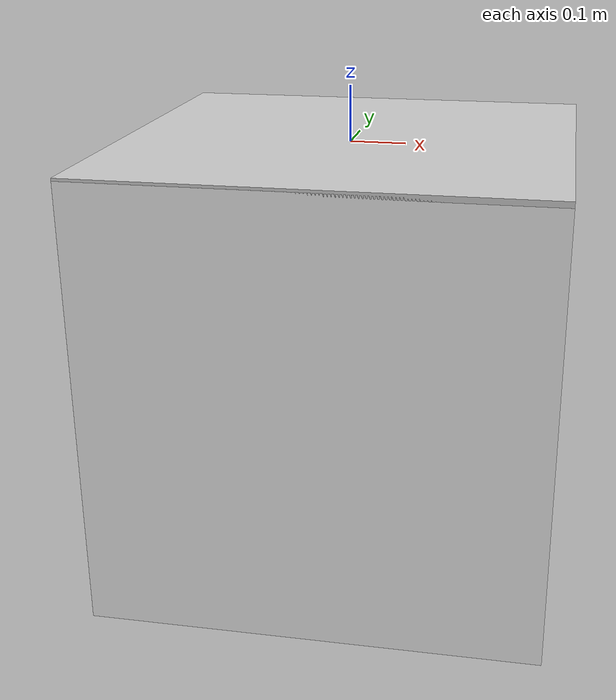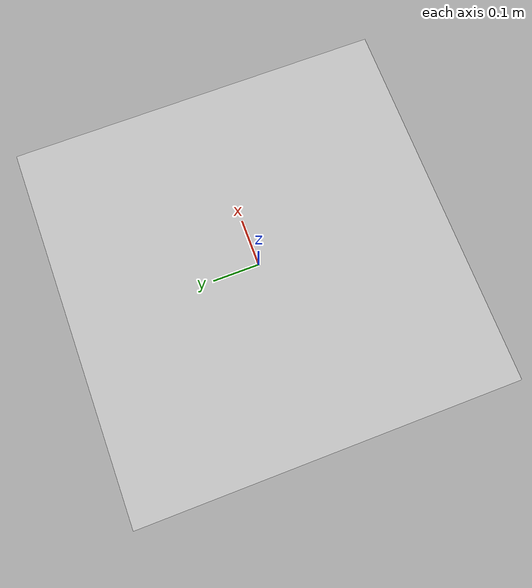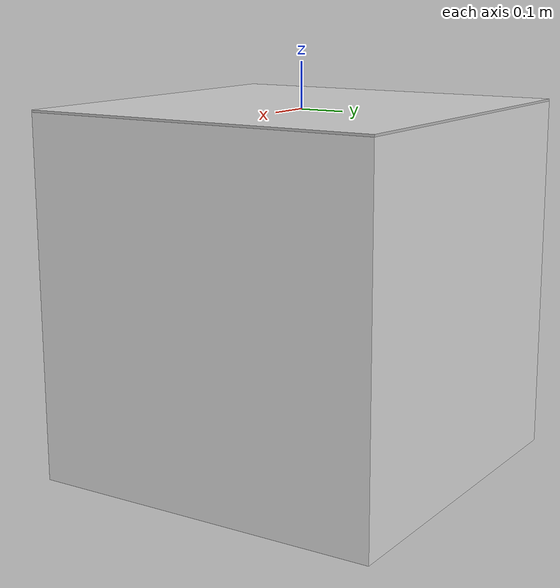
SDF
<?xml version='1.0'?>
<sdf version='1.5'>
  <model name='aruco_marker_4'>

    <link name='marker'>
      <pose frame=''>0 0 0.005 0 0 0</pose>
      <visual name='visual'>
        <geometry>
          <box>
            <size>0.8 0.8 0.01</size>
          </box>
        </geometry>
        <material>
          <script>
            <uri>model://aruco_marker_4/materials/scripts</uri>
            <uri>model://aruco_marker_4/materials/textures</uri>
            <name>ArucoMarker4/Marker</name>
          </script>
          <ambient>1 1 1 1</ambient>
          <diffuse>0.8 0.8 0.8 1</diffuse>
          <specular>0 0 0 1</specular>
          <emissive>0.2 0.2 0.2 1</emissive>
          <shader type='vertex'>
            <normal_map>__default__</normal_map>
          </shader>
        </material>
        <pose frame=''>0 0 0 0 -0 0</pose>
        <cast_shadows>1</cast_shadows>
        <transparency>0</transparency>
      </visual>
      <collision name='collision'>
        <laser_retro>0</laser_retro>
        <max_contacts>10</max_contacts>
        <pose frame=''>0 0 0 0 -0 0</pose>
        <geometry>
          <box>
            <size>0.8 0.8 0.01</size>
          </box>
        </geometry>
      </collision>
    </link>

    <link name='marker_pad'>
      <pose frame='marker'>0 0 -0.4 0 -0 0</pose>
      <visual name='visual'>
        <geometry>
          <box>
            <size>0.8 0.8 0.8</size>
          </box>
        </geometry>
        <material>
          <lighting>1</lighting>
          <script>
            <uri>file://media/materials/scripts/gazebo.material</uri>
            <name>Gazebo/White</name>
          </script>
          <ambient>1 1 1 1</ambient>
          <diffuse>0.8 0.8 0.8 1</diffuse>
          <specular>0 0 0 1</specular>
          <emissive>0 0 0 1</emissive>
          <shader type='vertex'>
            <normal_map>__default__</normal_map>
          </shader>
        </material>
        <cast_shadows>1</cast_shadows>
        <transparency>0</transparency>
      </visual>
      <collision name='collision'>
        <laser_retro>0</laser_retro>
        <max_contacts>10</max_contacts>
        <pose frame=''>0 0 -0.4 0 -0 0</pose>
        <geometry>
          <box>
            <size>0.8 0.8 0.8</size>
          </box>
        </geometry>
      </collision>
    </link>

    <joint name='marker_JOINT_marker_pad' type='fixed'>
      <parent>marker</parent>
      <child>marker_pad</child>
      <pose frame=''>0 0 0 0 -0 0</pose>
    </joint>

    <static>1</static>
    <allow_auto_disable>1</allow_auto_disable>

  </model>
</sdf>
